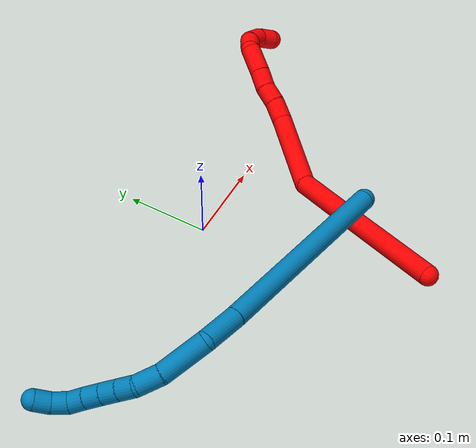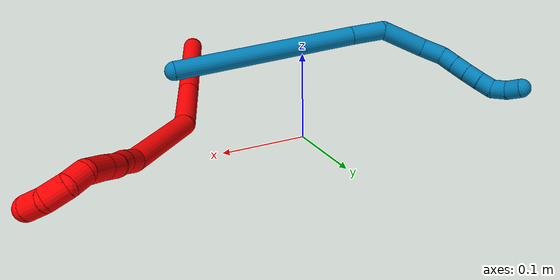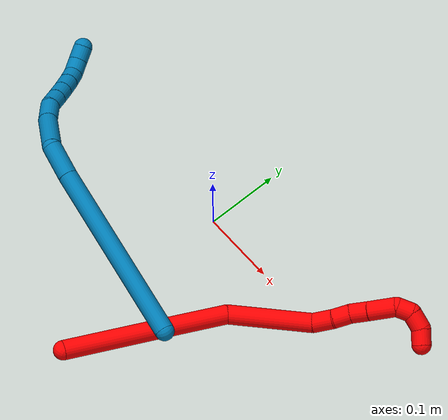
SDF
<sdf version="1.7">
 <world name="default">
  <model name="photoneo_s_sensor">
   <static>1</static>
   <pose>0 0 2 1.57079 1.57079 3.14159</pose>
   <link name="link">
    <inertial><mass>0.1</mass></inertial>
    <sensor name="sensor" type="depth">
     <update_rate>30</update_rate>
     <camera>
      <horizontal_fov>1.22</horizontal_fov>
      <image><width>1920</width><height>1200</height><format>B8G8R8</format></image>
      <clip><near>0.1</near><far>4</far></clip>
      <depth_camera><output>points</output></depth_camera>
     </camera>
     <plugin name="camera_plugin" filename="libgazebo_ros_depth_camera.so">
      <baseline>0.2</baseline>
      <alwaysOn>1</alwaysOn>
      <updateRate>0.0</updateRate>
      <cameraName>camera_ir</cameraName>
      <imageTopicName>/camera/color/image_raw</imageTopicName>
      <cameraInfoTopicName>/camera/color/camera_info</cameraInfoTopicName>
      <depthImageTopicName>/camera/depth/image_raw</depthImageTopicName>
      <depthImageCameraInfoTopicName>/camera/depth/camera_info</depthImageCameraInfoTopicName>
      <pointCloudTopicName>/camera/depth/points</pointCloudTopicName>
      <frameName>fr_optical</frameName>
      <pointCloudCutoff>0.1</pointCloudCutoff>
      <pointCloudCutoffMax>2.0</pointCloudCutoffMax>
      <distortionK1>0</distortionK1>
      <distortionK2>0</distortionK2>
      <distortionK3>0</distortionK3>
      <distortionT1>0</distortionT1>
      <distortionT2>0</distortionT2>
      <CxPrime>0</CxPrime>
      <Cx>0</Cx>
      <Cy>0</Cy>
      <focalLength>0</focalLength>
      <hackBaseline>0</hackBaseline>
     </plugin>
    </sensor>
   </link>
  </model>
  <model name="bin">
   <static>1</static>
   <link name="bottom">
    <collision name="collision-bottom">
     <pose>0 0 -0.01 0 -0 0</pose>
     <geometry><box><size>0.8 0.6 0.02</size></box></geometry>
     <surface>
      <friction><ode><mu>100</mu><mu2>100</mu2></ode></friction>
      <contact><collide_bitmask>65535</collide_bitmask></contact>
     </surface>
    </collision>
   </link>
   <link name="west_wall">
    <collision name="collision-west_wall">
     <pose>-0.41 0 0.1 0 -0 0</pose>
     <geometry><box><size>0.02 0.6 0.2</size></box></geometry>
     <surface>
      <friction><ode><mu>100</mu><mu2>100</mu2></ode></friction>
      <contact><collide_bitmask>65535</collide_bitmask></contact>
     </surface>
    </collision>
   </link>
   <link name="east_wall">
    <collision name="collision-east_wall">
     <pose>0.41 0 0.1 0 -0 0</pose>
     <geometry><box><size>0.02 0.6 0.2</size></box></geometry>
     <surface>
      <friction><ode><mu>100</mu><mu2>100</mu2></ode></friction>
      <contact><collide_bitmask>65535</collide_bitmask></contact>
     </surface>
    </collision>
   </link>
   <link name="south_wall">
    <collision name="collision-south_wall">
     <pose>0 -0.31 0.1 0 -0 0</pose>
     <geometry><box><size>0.8 0.02 0.2</size></box></geometry>
     <surface>
      <friction><ode><mu>100</mu><mu2>100</mu2></ode></friction>
      <contact><collide_bitmask>65535</collide_bitmask></contact>
     </surface>
    </collision>
   </link>
   <link name="north_wall">
    <collision name="collision-north_wall">
     <pose>0 0.31 0.1 0 -0 0</pose>
     <geometry><box><size>0.8 0.02 0.2</size></box></geometry>
     <surface>
      <friction><ode><mu>100</mu><mu2>100</mu2></ode></friction>
      <contact><collide_bitmask>65535</collide_bitmask></contact>
     </surface>
    </collision>
   </link>
  </model>
  <model name="2">
   <static>0</static>
   <link name="2">
    <collision name="collision-cylinder-e_1_1_4">
     <pose>0.049173 0.0345 0.031501 -0.830805 0.811004 -0.374266</pose>
     <geometry><cylinder><radius>0.0125</radius><length>0.135655</length></cylinder></geometry>
     <surface>
      <friction><ode><mu>1.16</mu><mu2>1.16</mu2><slip1>0</slip1><slip2>0</slip2></ode></friction>
      <contact><ode><kp>1e+06</kp><kd>1</kd><max_vel>0</max_vel><min_depth>0.001</min_depth></ode></contact>
     </surface>
    </collision>
    <visual name="visual-cylinder-e_1_1_4">
     <pose>0.049173 0.0345 0.031501 -0.830805 0.811004 -0.374266</pose>
     <geometry><cylinder><radius>0.0125</radius><length>0.135655</length></cylinder></geometry>
     <material><ambient>1 0 0 1</ambient></material>
    </visual>
    <collision name="collision-cylinder-e_2_4_5">
     <pose>0.127702 0.08966 0.082113 -0.824338 0.806451 -0.368793</pose>
     <geometry><cylinder><radius>0.0125</radius><length>0.081336</length></cylinder></geometry>
     <surface>
      <friction><ode><mu>1.16</mu><mu2>1.16</mu2><slip1>0</slip1><slip2>0</slip2></ode></friction>
      <contact><ode><kp>1e+06</kp><kd>1</kd><max_vel>0</max_vel><min_depth>0.001</min_depth></ode></contact>
     </surface>
    </collision>
    <visual name="visual-cylinder-e_2_4_5">
     <pose>0.127702 0.08966 0.082113 -0.824338 0.806451 -0.368793</pose>
     <geometry><cylinder><radius>0.0125</radius><length>0.081336</length></cylinder></geometry>
     <material><ambient>1 0 0 1</ambient></material>
    </visual>
    <collision name="collision-cylinder-e_3_5_6">
     <pose>0.18128 0.131557 0.145326 -0.448755 0.459528 -0.106658</pose>
     <geometry><cylinder><radius>0.0125</radius><length>0.109227</length></cylinder></geometry>
     <surface>
      <friction><ode><mu>1.16</mu><mu2>1.16</mu2><slip1>0</slip1><slip2>0</slip2></ode></friction>
      <contact><ode><kp>1e+06</kp><kd>1</kd><max_vel>0</max_vel><min_depth>0.001</min_depth></ode></contact>
     </surface>
    </collision>
    <visual name="visual-cylinder-e_3_5_6">
     <pose>0.18128 0.131557 0.145326 -0.448755 0.459528 -0.106658</pose>
     <geometry><cylinder><radius>0.0125</radius><length>0.109227</length></cylinder></geometry>
     <material><ambient>1 0 0 1</ambient></material>
    </visual>
    <collision name="collision-cylinder-e_4_6_7">
     <pose>0.208381 0.162078 0.198923 -0.77422 0.213452 -0.087296</pose>
     <geometry><cylinder><radius>0.0125</radius><length>0.027178</length></cylinder></geometry>
     <surface>
      <friction><ode><mu>1.16</mu><mu2>1.16</mu2><slip1>0</slip1><slip2>0</slip2></ode></friction>
      <contact><ode><kp>1e+06</kp><kd>1</kd><max_vel>0</max_vel><min_depth>0.001</min_depth></ode></contact>
     </surface>
    </collision>
    <visual name="visual-cylinder-e_4_6_7">
     <pose>0.208381 0.162078 0.198923 -0.77422 0.213452 -0.087296</pose>
     <geometry><cylinder><radius>0.0125</radius><length>0.027178</length></cylinder></geometry>
     <material><ambient>1 0 0 1</ambient></material>
    </visual>
    <collision name="collision-cylinder-e_5_7_8">
     <pose>0.215204 0.179783 0.215359 -0.881334 0.346852 -0.16486</pose>
     <geometry><cylinder><radius>0.0125</radius><length>0.023206</length></cylinder></geometry>
     <surface>
      <friction><ode><mu>1.16</mu><mu2>1.16</mu2><slip1>0</slip1><slip2>0</slip2></ode></friction>
      <contact><ode><kp>1e+06</kp><kd>1</kd><max_vel>0</max_vel><min_depth>0.001</min_depth></ode></contact>
     </surface>
    </collision>
    <visual name="visual-cylinder-e_5_7_8">
     <pose>0.215204 0.179783 0.215359 -0.881334 0.346852 -0.16486</pose>
     <geometry><cylinder><radius>0.0125</radius><length>0.023206</length></cylinder></geometry>
     <material><ambient>1 0 0 1</ambient></material>
    </visual>
    <collision name="collision-cylinder-e_6_8_9">
     <pose>0.221498 0.195683 0.230981 -0.71126 0.202257 -0.075344</pose>
     <geometry><cylinder><radius>0.0125</radius><length>0.023395</length></cylinder></geometry>
     <surface>
      <friction><ode><mu>1.16</mu><mu2>1.16</mu2><slip1>0</slip1><slip2>0</slip2></ode></friction>
      <contact><ode><kp>1e+06</kp><kd>1</kd><max_vel>0</max_vel><min_depth>0.001</min_depth></ode></contact>
     </surface>
    </collision>
    <visual name="visual-cylinder-e_6_8_9">
     <pose>0.221498 0.195683 0.230981 -0.71126 0.202257 -0.075344</pose>
     <geometry><cylinder><radius>0.0125</radius><length>0.023395</length></cylinder></geometry>
     <material><ambient>1 0 0 1</ambient></material>
    </visual>
    <collision name="collision-cylinder-e_7_9_10">
     <pose>0.228366 0.214833 0.252642 -0.732287 0.253301 -0.097569</pose>
     <geometry><cylinder><radius>0.0125</radius><length>0.036062</length></cylinder></geometry>
     <surface>
      <friction><ode><mu>1.16</mu><mu2>1.16</mu2><slip1>0</slip1><slip2>0</slip2></ode></friction>
      <contact><ode><kp>1e+06</kp><kd>1</kd><max_vel>0</max_vel><min_depth>0.001</min_depth></ode></contact>
     </surface>
    </collision>
    <visual name="visual-cylinder-e_7_9_10">
     <pose>0.228366 0.214833 0.252642 -0.732287 0.253301 -0.097569</pose>
     <geometry><cylinder><radius>0.0125</radius><length>0.036062</length></cylinder></geometry>
     <material><ambient>1 0 0 1</ambient></material>
    </visual>
    <collision name="collision-cylinder-e_8_10_11">
     <pose>0.237842 0.22764 0.274408 -0.128709 0.510162 -0.033605</pose>
     <geometry><cylinder><radius>0.0125</radius><length>0.020302</length></cylinder></geometry>
     <surface>
      <friction><ode><mu>1.16</mu><mu2>1.16</mu2><slip1>0</slip1><slip2>0</slip2></ode></friction>
      <contact><ode><kp>1e+06</kp><kd>1</kd><max_vel>0</max_vel><min_depth>0.001</min_depth></ode></contact>
     </surface>
    </collision>
    <visual name="visual-cylinder-e_8_10_11">
     <pose>0.237842 0.22764 0.274408 -0.128709 0.510162 -0.033605</pose>
     <geometry><cylinder><radius>0.0125</radius><length>0.020302</length></cylinder></geometry>
     <material><ambient>1 0 0 1</ambient></material>
    </visual>
    <collision name="collision-cylinder-e_9_11_12">
     <pose>0.245862 0.22302 0.292687 0.545143 0.269212 0.075674</pose>
     <geometry><cylinder><radius>0.0125</radius><length>0.023036</length></cylinder></geometry>
     <surface>
      <friction><ode><mu>1.16</mu><mu2>1.16</mu2><slip1>0</slip1><slip2>0</slip2></ode></friction>
      <contact><ode><kp>1e+06</kp><kd>1</kd><max_vel>0</max_vel><min_depth>0.001</min_depth></ode></contact>
     </surface>
    </collision>
    <visual name="visual-cylinder-e_9_11_12">
     <pose>0.245862 0.22302 0.292687 0.545143 0.269212 0.075674</pose>
     <geometry><cylinder><radius>0.0125</radius><length>0.023036</length></cylinder></geometry>
     <material><ambient>1 0 0 1</ambient></material>
    </visual>
    <collision name="collision-cylinder-e_10_12_2">
     <pose>0.248703 0.208769 0.308007 0.96956 -0.021564 -0.011358</pose>
     <geometry><cylinder><radius>0.0125</radius><length>0.020605</length></cylinder></geometry>
     <surface>
      <friction><ode><mu>1.16</mu><mu2>1.16</mu2><slip1>0</slip1><slip2>0</slip2></ode></friction>
      <contact><ode><kp>1e+06</kp><kd>1</kd><max_vel>0</max_vel><min_depth>0.001</min_depth></ode></contact>
     </surface>
    </collision>
    <visual name="visual-cylinder-e_10_12_2">
     <pose>0.248703 0.208769 0.308007 0.96956 -0.021564 -0.011358</pose>
     <geometry><cylinder><radius>0.0125</radius><length>0.020605</length></cylinder></geometry>
     <material><ambient>1 0 0 1</ambient></material>
    </visual>
    <collision name="collision-sphere-2">
     <pose>0.248481 0.200275 0.313833 0 -0 0</pose>
     <geometry><sphere><radius>0.0125</radius></sphere></geometry>
     <surface>
      <friction><ode><mu>1.16</mu><mu2>1.16</mu2><slip1>0</slip1><slip2>0</slip2></ode></friction>
      <contact><ode><kp>1e+06</kp><kd>1</kd><max_vel>0</max_vel><min_depth>0.001</min_depth></ode></contact>
     </surface>
    </collision>
    <visual name="visual-sphere-2">
     <pose>0.248481 0.200275 0.313833 0 -0 0</pose>
     <geometry><sphere><radius>0.0125</radius></sphere></geometry>
     <material><ambient>1 0 0 1</ambient></material>
    </visual>
    <collision name="collision-sphere-12">
     <pose>0.248925 0.217263 0.30218 0 -0 0</pose>
     <geometry><sphere><radius>0.0125</radius></sphere></geometry>
     <surface>
      <friction><ode><mu>1.16</mu><mu2>1.16</mu2><slip1>0</slip1><slip2>0</slip2></ode></friction>
      <contact><ode><kp>1e+06</kp><kd>1</kd><max_vel>0</max_vel><min_depth>0.001</min_depth></ode></contact>
     </surface>
    </collision>
    <visual name="visual-sphere-12">
     <pose>0.248925 0.217263 0.30218 0 -0 0</pose>
     <geometry><sphere><radius>0.0125</radius></sphere></geometry>
     <material><ambient>1 0 0 1</ambient></material>
    </visual>
    <collision name="collision-sphere-11">
     <pose>0.242799 0.228777 0.283193 0 -0 0</pose>
     <geometry><sphere><radius>0.0125</radius></sphere></geometry>
     <surface>
      <friction><ode><mu>1.16</mu><mu2>1.16</mu2><slip1>0</slip1><slip2>0</slip2></ode></friction>
      <contact><ode><kp>1e+06</kp><kd>1</kd><max_vel>0</max_vel><min_depth>0.001</min_depth></ode></contact>
     </surface>
    </collision>
    <visual name="visual-sphere-11">
     <pose>0.242799 0.228777 0.283193 0 -0 0</pose>
     <geometry><sphere><radius>0.0125</radius></sphere></geometry>
     <material><ambient>1 0 0 1</ambient></material>
    </visual>
    <collision name="collision-sphere-10">
     <pose>0.232885 0.226503 0.265623 0 -0 0</pose>
     <geometry><sphere><radius>0.0125</radius></sphere></geometry>
     <surface>
      <friction><ode><mu>1.16</mu><mu2>1.16</mu2><slip1>0</slip1><slip2>0</slip2></ode></friction>
      <contact><ode><kp>1e+06</kp><kd>1</kd><max_vel>0</max_vel><min_depth>0.001</min_depth></ode></contact>
     </surface>
    </collision>
    <visual name="visual-sphere-10">
     <pose>0.232885 0.226503 0.265623 0 -0 0</pose>
     <geometry><sphere><radius>0.0125</radius></sphere></geometry>
     <material><ambient>1 0 0 1</ambient></material>
    </visual>
    <collision name="collision-sphere-9">
     <pose>0.223848 0.203163 0.239662 0 -0 0</pose>
     <geometry><sphere><radius>0.0125</radius></sphere></geometry>
     <surface>
      <friction><ode><mu>1.16</mu><mu2>1.16</mu2><slip1>0</slip1><slip2>0</slip2></ode></friction>
      <contact><ode><kp>1e+06</kp><kd>1</kd><max_vel>0</max_vel><min_depth>0.001</min_depth></ode></contact>
     </surface>
    </collision>
    <visual name="visual-sphere-9">
     <pose>0.223848 0.203163 0.239662 0 -0 0</pose>
     <geometry><sphere><radius>0.0125</radius></sphere></geometry>
     <material><ambient>1 0 0 1</ambient></material>
    </visual>
    <collision name="collision-sphere-4">
     <pose>0.098347 0.068999 0.063001 0 -0 0</pose>
     <geometry><sphere><radius>0.0125</radius></sphere></geometry>
     <surface>
      <friction><ode><mu>1.16</mu><mu2>1.16</mu2><slip1>0</slip1><slip2>0</slip2></ode></friction>
      <contact><ode><kp>1e+06</kp><kd>1</kd><max_vel>0</max_vel><min_depth>0.001</min_depth></ode></contact>
     </surface>
    </collision>
    <visual name="visual-sphere-4">
     <pose>0.098347 0.068999 0.063001 0 -0 0</pose>
     <geometry><sphere><radius>0.0125</radius></sphere></geometry>
     <material><ambient>1 0 0 1</ambient></material>
    </visual>
    <collision name="collision-sphere-1">
     <geometry><sphere><radius>0.0125</radius></sphere></geometry>
     <surface>
      <friction><ode><mu>1.16</mu><mu2>1.16</mu2><slip1>0</slip1><slip2>0</slip2></ode></friction>
      <contact><ode><kp>1e+06</kp><kd>1</kd><max_vel>0</max_vel><min_depth>0.001</min_depth></ode></contact>
     </surface>
    </collision>
    <visual name="visual-sphere-1">
     <geometry><sphere><radius>0.0125</radius></sphere></geometry>
     <material><ambient>1 0 0 1</ambient></material>
    </visual>
    <collision name="collision-sphere-8">
     <pose>0.219148 0.188202 0.222301 0 -0 0</pose>
     <geometry><sphere><radius>0.0125</radius></sphere></geometry>
     <surface>
      <friction><ode><mu>1.16</mu><mu2>1.16</mu2><slip1>0</slip1><slip2>0</slip2></ode></friction>
      <contact><ode><kp>1e+06</kp><kd>1</kd><max_vel>0</max_vel><min_depth>0.001</min_depth></ode></contact>
     </surface>
    </collision>
    <visual name="visual-sphere-8">
     <pose>0.219148 0.188202 0.222301 0 -0 0</pose>
     <geometry><sphere><radius>0.0125</radius></sphere></geometry>
     <material><ambient>1 0 0 1</ambient></material>
    </visual>
    <collision name="collision-sphere-5">
     <pose>0.157058 0.110321 0.101224 0 -0 0</pose>
     <geometry><sphere><radius>0.0125</radius></sphere></geometry>
     <surface>
      <friction><ode><mu>1.16</mu><mu2>1.16</mu2><slip1>0</slip1><slip2>0</slip2></ode></friction>
      <contact><ode><kp>1e+06</kp><kd>1</kd><max_vel>0</max_vel><min_depth>0.001</min_depth></ode></contact>
     </surface>
    </collision>
    <visual name="visual-sphere-5">
     <pose>0.157058 0.110321 0.101224 0 -0 0</pose>
     <geometry><sphere><radius>0.0125</radius></sphere></geometry>
     <material><ambient>1 0 0 1</ambient></material>
    </visual>
    <collision name="collision-sphere-6">
     <pose>0.205502 0.152793 0.189427 0 -0 0</pose>
     <geometry><sphere><radius>0.0125</radius></sphere></geometry>
     <surface>
      <friction><ode><mu>1.16</mu><mu2>1.16</mu2><slip1>0</slip1><slip2>0</slip2></ode></friction>
      <contact><ode><kp>1e+06</kp><kd>1</kd><max_vel>0</max_vel><min_depth>0.001</min_depth></ode></contact>
     </surface>
    </collision>
    <visual name="visual-sphere-6">
     <pose>0.205502 0.152793 0.189427 0 -0 0</pose>
     <geometry><sphere><radius>0.0125</radius></sphere></geometry>
     <material><ambient>1 0 0 1</ambient></material>
    </visual>
    <collision name="collision-sphere-7">
     <pose>0.21126 0.171364 0.208418 0 -0 0</pose>
     <geometry><sphere><radius>0.0125</radius></sphere></geometry>
     <surface>
      <friction><ode><mu>1.16</mu><mu2>1.16</mu2><slip1>0</slip1><slip2>0</slip2></ode></friction>
      <contact><ode><kp>1e+06</kp><kd>1</kd><max_vel>0</max_vel><min_depth>0.001</min_depth></ode></contact>
     </surface>
    </collision>
    <visual name="visual-sphere-7">
     <pose>0.21126 0.171364 0.208418 0 -0 0</pose>
     <geometry><sphere><radius>0.0125</radius></sphere></geometry>
     <material><ambient>1 0 0 1</ambient></material>
    </visual>
    <inertial>
     <pose>0.153099 0.12261 0.140807 0 -0 0</pose>
     <mass>0.5</mass>
     <inertia>
      <ixx>0.000226</ixx>
      <ixy>0</ixy>
      <ixz>0</ixz>
      <iyy>0.00027</iyy>
      <iyz>0</iyz>
      <izz>-0.000402</izz>
     </inertia>
    </inertial>
   </link>
   <pose>0.03639 -0.274839 0.047328 1.4235 0.848298 1.5866</pose>
  </model>
  <model name="9">
   <static>0</static>
   <link name="9">
    <collision name="collision-cylinder-e_1_1_4">
     <pose>-0.079319 0.039698 0.082547 -0.448256 -0.713686 0.169559</pose>
     <geometry><cylinder><radius>0.0125</radius><length>0.242334</length></cylinder></geometry>
     <surface>
      <friction><ode><mu>1.16</mu><mu2>1.16</mu2><slip1>0</slip1><slip2>0</slip2></ode></friction>
      <contact><ode><kp>1e+06</kp><kd>1</kd><max_vel>0</max_vel><min_depth>0.001</min_depth></ode></contact>
     </surface>
    </collision>
    <visual name="visual-cylinder-e_1_1_4">
     <pose>-0.079319 0.039698 0.082547 -0.448256 -0.713686 0.169559</pose>
     <geometry><cylinder><radius>0.0125</radius><length>0.242334</length></cylinder></geometry>
     <material><ambient>0 0.490196 0.709804 1</ambient></material>
    </visual>
    <collision name="collision-cylinder-e_2_4_5">
     <pose>-0.173352 0.088173 0.180644 -0.513919 -0.689252 0.188085</pose>
     <geometry><cylinder><radius>0.0125</radius><length>0.046275</length></cylinder></geometry>
     <surface>
      <friction><ode><mu>1.16</mu><mu2>1.16</mu2><slip1>0</slip1><slip2>0</slip2></ode></friction>
      <contact><ode><kp>1e+06</kp><kd>1</kd><max_vel>0</max_vel><min_depth>0.001</min_depth></ode></contact>
     </surface>
    </collision>
    <visual name="visual-cylinder-e_2_4_5">
     <pose>-0.173352 0.088173 0.180644 -0.513919 -0.689252 0.188085</pose>
     <geometry><cylinder><radius>0.0125</radius><length>0.046275</length></cylinder></geometry>
     <material><ambient>0 0.490196 0.709804 1</ambient></material>
    </visual>
    <collision name="collision-cylinder-e_3_5_6">
     <pose>-0.208778 0.117283 0.201016 -1.3379 -0.78093 0.629167</pose>
     <geometry><cylinder><radius>0.0125</radius><length>0.058843</length></cylinder></geometry>
     <surface>
      <friction><ode><mu>1.16</mu><mu2>1.16</mu2><slip1>0</slip1><slip2>0</slip2></ode></friction>
      <contact><ode><kp>1e+06</kp><kd>1</kd><max_vel>0</max_vel><min_depth>0.001</min_depth></ode></contact>
     </surface>
    </collision>
    <visual name="visual-cylinder-e_3_5_6">
     <pose>-0.208778 0.117283 0.201016 -1.3379 -0.78093 0.629167</pose>
     <geometry><cylinder><radius>0.0125</radius><length>0.058843</length></cylinder></geometry>
     <material><ambient>0 0.490196 0.709804 1</ambient></material>
    </visual>
    <collision name="collision-cylinder-e_4_6_7">
     <pose>-0.237691 0.150109 0.208627 -1.35119 -0.569823 0.46108</pose>
     <geometry><cylinder><radius>0.0125</radius><length>0.030406</length></cylinder></geometry>
     <surface>
      <friction><ode><mu>1.16</mu><mu2>1.16</mu2><slip1>0</slip1><slip2>0</slip2></ode></friction>
      <contact><ode><kp>1e+06</kp><kd>1</kd><max_vel>0</max_vel><min_depth>0.001</min_depth></ode></contact>
     </surface>
    </collision>
    <visual name="visual-cylinder-e_4_6_7">
     <pose>-0.237691 0.150109 0.208627 -1.35119 -0.569823 0.46108</pose>
     <geometry><cylinder><radius>0.0125</radius><length>0.030406</length></cylinder></geometry>
     <material><ambient>0 0.490196 0.709804 1</ambient></material>
    </visual>
    <collision name="collision-cylinder-e_5_7_8">
     <pose>-0.249456 0.172313 0.210671 -1.64741 -0.350782 0.378103</pose>
     <geometry><cylinder><radius>0.0125</radius><length>0.02074</length></cylinder></geometry>
     <surface>
      <friction><ode><mu>1.16</mu><mu2>1.16</mu2><slip1>0</slip1><slip2>0</slip2></ode></friction>
      <contact><ode><kp>1e+06</kp><kd>1</kd><max_vel>0</max_vel><min_depth>0.001</min_depth></ode></contact>
     </surface>
    </collision>
    <visual name="visual-cylinder-e_5_7_8">
     <pose>-0.249456 0.172313 0.210671 -1.64741 -0.350782 0.378103</pose>
     <geometry><cylinder><radius>0.0125</radius><length>0.02074</length></cylinder></geometry>
     <material><ambient>0 0.490196 0.709804 1</ambient></material>
    </visual>
    <collision name="collision-cylinder-e_6_8_9">
     <pose>-0.256587 0.191588 0.209285 -1.63761 -0.356265 0.38033</pose>
     <geometry><cylinder><radius>0.0125</radius><length>0.020459</length></cylinder></geometry>
     <surface>
      <friction><ode><mu>1.16</mu><mu2>1.16</mu2><slip1>0</slip1><slip2>0</slip2></ode></friction>
      <contact><ode><kp>1e+06</kp><kd>1</kd><max_vel>0</max_vel><min_depth>0.001</min_depth></ode></contact>
     </surface>
    </collision>
    <visual name="visual-cylinder-e_6_8_9">
     <pose>-0.256587 0.191588 0.209285 -1.63761 -0.356265 0.38033</pose>
     <geometry><cylinder><radius>0.0125</radius><length>0.020459</length></cylinder></geometry>
     <material><ambient>0 0.490196 0.709804 1</ambient></material>
    </visual>
    <collision name="collision-cylinder-e_7_9_10">
     <pose>-0.263907 0.21082 0.208302 -1.60624 -0.370053 0.38309</pose>
     <geometry><cylinder><radius>0.0125</radius><length>0.020749</length></cylinder></geometry>
     <surface>
      <friction><ode><mu>1.16</mu><mu2>1.16</mu2><slip1>0</slip1><slip2>0</slip2></ode></friction>
      <contact><ode><kp>1e+06</kp><kd>1</kd><max_vel>0</max_vel><min_depth>0.001</min_depth></ode></contact>
     </surface>
    </collision>
    <visual name="visual-cylinder-e_7_9_10">
     <pose>-0.263907 0.21082 0.208302 -1.60624 -0.370053 0.38309</pose>
     <geometry><cylinder><radius>0.0125</radius><length>0.020749</length></cylinder></geometry>
     <material><ambient>0 0.490196 0.709804 1</ambient></material>
    </visual>
    <collision name="collision-cylinder-e_8_10_11">
     <pose>-0.271615 0.229722 0.207924 -1.57466 -0.404702 0.406228</pose>
     <geometry><cylinder><radius>0.0125</radius><length>0.020095</length></cylinder></geometry>
     <surface>
      <friction><ode><mu>1.16</mu><mu2>1.16</mu2><slip1>0</slip1><slip2>0</slip2></ode></friction>
      <contact><ode><kp>1e+06</kp><kd>1</kd><max_vel>0</max_vel><min_depth>0.001</min_depth></ode></contact>
     </surface>
    </collision>
    <visual name="visual-cylinder-e_8_10_11">
     <pose>-0.271615 0.229722 0.207924 -1.57466 -0.404702 0.406228</pose>
     <geometry><cylinder><radius>0.0125</radius><length>0.020095</length></cylinder></geometry>
     <material><ambient>0 0.490196 0.709804 1</ambient></material>
    </visual>
    <collision name="collision-cylinder-e_9_11_12">
     <pose>-0.277069 0.247945 0.212025 -1.13939 -0.150271 0.096361</pose>
     <geometry><cylinder><radius>0.0125</radius><length>0.020011</length></cylinder></geometry>
     <surface>
      <friction><ode><mu>1.16</mu><mu2>1.16</mu2><slip1>0</slip1><slip2>0</slip2></ode></friction>
      <contact><ode><kp>1e+06</kp><kd>1</kd><max_vel>0</max_vel><min_depth>0.001</min_depth></ode></contact>
     </surface>
    </collision>
    <visual name="visual-cylinder-e_9_11_12">
     <pose>-0.277069 0.247945 0.212025 -1.13939 -0.150271 0.096361</pose>
     <geometry><cylinder><radius>0.0125</radius><length>0.020011</length></cylinder></geometry>
     <material><ambient>0 0.490196 0.709804 1</ambient></material>
    </visual>
    <collision name="collision-cylinder-e_10_12_2">
     <pose>-0.278043 0.265233 0.22179 -0.97499 0.052183 -0.02767</pose>
     <geometry><cylinder><radius>0.0125</radius><length>0.020088</length></cylinder></geometry>
     <surface>
      <friction><ode><mu>1.16</mu><mu2>1.16</mu2><slip1>0</slip1><slip2>0</slip2></ode></friction>
      <contact><ode><kp>1e+06</kp><kd>1</kd><max_vel>0</max_vel><min_depth>0.001</min_depth></ode></contact>
     </surface>
    </collision>
    <visual name="visual-cylinder-e_10_12_2">
     <pose>-0.278043 0.265233 0.22179 -0.97499 0.052183 -0.02767</pose>
     <geometry><cylinder><radius>0.0125</radius><length>0.020088</length></cylinder></geometry>
     <material><ambient>0 0.490196 0.709804 1</ambient></material>
    </visual>
    <collision name="collision-sphere-2">
     <pose>-0.277519 0.273535 0.227419 0 -0 0</pose>
     <geometry><sphere><radius>0.0125</radius></sphere></geometry>
     <surface>
      <friction><ode><mu>1.16</mu><mu2>1.16</mu2><slip1>0</slip1><slip2>0</slip2></ode></friction>
      <contact><ode><kp>1e+06</kp><kd>1</kd><max_vel>0</max_vel><min_depth>0.001</min_depth></ode></contact>
     </surface>
    </collision>
    <visual name="visual-sphere-2">
     <pose>-0.277519 0.273535 0.227419 0 -0 0</pose>
     <geometry><sphere><radius>0.0125</radius></sphere></geometry>
     <material><ambient>0 0.490196 0.709804 1</ambient></material>
    </visual>
    <collision name="collision-sphere-12">
     <pose>-0.278567 0.256931 0.216161 0 -0 0</pose>
     <geometry><sphere><radius>0.0125</radius></sphere></geometry>
     <surface>
      <friction><ode><mu>1.16</mu><mu2>1.16</mu2><slip1>0</slip1><slip2>0</slip2></ode></friction>
      <contact><ode><kp>1e+06</kp><kd>1</kd><max_vel>0</max_vel><min_depth>0.001</min_depth></ode></contact>
     </surface>
    </collision>
    <visual name="visual-sphere-12">
     <pose>-0.278567 0.256931 0.216161 0 -0 0</pose>
     <geometry><sphere><radius>0.0125</radius></sphere></geometry>
     <material><ambient>0 0.490196 0.709804 1</ambient></material>
    </visual>
    <collision name="collision-sphere-11">
     <pose>-0.275571 0.238958 0.207888 0 -0 0</pose>
     <geometry><sphere><radius>0.0125</radius></sphere></geometry>
     <surface>
      <friction><ode><mu>1.16</mu><mu2>1.16</mu2><slip1>0</slip1><slip2>0</slip2></ode></friction>
      <contact><ode><kp>1e+06</kp><kd>1</kd><max_vel>0</max_vel><min_depth>0.001</min_depth></ode></contact>
     </surface>
    </collision>
    <visual name="visual-sphere-11">
     <pose>-0.275571 0.238958 0.207888 0 -0 0</pose>
     <geometry><sphere><radius>0.0125</radius></sphere></geometry>
     <material><ambient>0 0.490196 0.709804 1</ambient></material>
    </visual>
    <collision name="collision-sphere-10">
     <pose>-0.267659 0.220487 0.20796 0 -0 0</pose>
     <geometry><sphere><radius>0.0125</radius></sphere></geometry>
     <surface>
      <friction><ode><mu>1.16</mu><mu2>1.16</mu2><slip1>0</slip1><slip2>0</slip2></ode></friction>
      <contact><ode><kp>1e+06</kp><kd>1</kd><max_vel>0</max_vel><min_depth>0.001</min_depth></ode></contact>
     </surface>
    </collision>
    <visual name="visual-sphere-10">
     <pose>-0.267659 0.220487 0.20796 0 -0 0</pose>
     <geometry><sphere><radius>0.0125</radius></sphere></geometry>
     <material><ambient>0 0.490196 0.709804 1</ambient></material>
    </visual>
    <collision name="collision-sphere-9">
     <pose>-0.260155 0.201154 0.208645 0 -0 0</pose>
     <geometry><sphere><radius>0.0125</radius></sphere></geometry>
     <surface>
      <friction><ode><mu>1.16</mu><mu2>1.16</mu2><slip1>0</slip1><slip2>0</slip2></ode></friction>
      <contact><ode><kp>1e+06</kp><kd>1</kd><max_vel>0</max_vel><min_depth>0.001</min_depth></ode></contact>
     </surface>
    </collision>
    <visual name="visual-sphere-9">
     <pose>-0.260155 0.201154 0.208645 0 -0 0</pose>
     <geometry><sphere><radius>0.0125</radius></sphere></geometry>
     <material><ambient>0 0.490196 0.709804 1</ambient></material>
    </visual>
    <collision name="collision-sphere-4">
     <pose>-0.158638 0.079395 0.165095 0 -0 0</pose>
     <geometry><sphere><radius>0.0125</radius></sphere></geometry>
     <surface>
      <friction><ode><mu>1.16</mu><mu2>1.16</mu2><slip1>0</slip1><slip2>0</slip2></ode></friction>
      <contact><ode><kp>1e+06</kp><kd>1</kd><max_vel>0</max_vel><min_depth>0.001</min_depth></ode></contact>
     </surface>
    </collision>
    <visual name="visual-sphere-4">
     <pose>-0.158638 0.079395 0.165095 0 -0 0</pose>
     <geometry><sphere><radius>0.0125</radius></sphere></geometry>
     <material><ambient>0 0.490196 0.709804 1</ambient></material>
    </visual>
    <collision name="collision-sphere-1">
     <geometry><sphere><radius>0.0125</radius></sphere></geometry>
     <surface>
      <friction><ode><mu>1.16</mu><mu2>1.16</mu2><slip1>0</slip1><slip2>0</slip2></ode></friction>
      <contact><ode><kp>1e+06</kp><kd>1</kd><max_vel>0</max_vel><min_depth>0.001</min_depth></ode></contact>
     </surface>
    </collision>
    <visual name="visual-sphere-1">
     <geometry><sphere><radius>0.0125</radius></sphere></geometry>
     <material><ambient>0 0.490196 0.709804 1</ambient></material>
    </visual>
    <collision name="collision-sphere-8">
     <pose>-0.253019 0.182023 0.209925 0 -0 0</pose>
     <geometry><sphere><radius>0.0125</radius></sphere></geometry>
     <surface>
      <friction><ode><mu>1.16</mu><mu2>1.16</mu2><slip1>0</slip1><slip2>0</slip2></ode></friction>
      <contact><ode><kp>1e+06</kp><kd>1</kd><max_vel>0</max_vel><min_depth>0.001</min_depth></ode></contact>
     </surface>
    </collision>
    <visual name="visual-sphere-8">
     <pose>-0.253019 0.182023 0.209925 0 -0 0</pose>
     <geometry><sphere><radius>0.0125</radius></sphere></geometry>
     <material><ambient>0 0.490196 0.709804 1</ambient></material>
    </visual>
    <collision name="collision-sphere-5">
     <pose>-0.188067 0.096951 0.196193 0 -0 0</pose>
     <geometry><sphere><radius>0.0125</radius></sphere></geometry>
     <surface>
      <friction><ode><mu>1.16</mu><mu2>1.16</mu2><slip1>0</slip1><slip2>0</slip2></ode></friction>
      <contact><ode><kp>1e+06</kp><kd>1</kd><max_vel>0</max_vel><min_depth>0.001</min_depth></ode></contact>
     </surface>
    </collision>
    <visual name="visual-sphere-5">
     <pose>-0.188067 0.096951 0.196193 0 -0 0</pose>
     <geometry><sphere><radius>0.0125</radius></sphere></geometry>
     <material><ambient>0 0.490196 0.709804 1</ambient></material>
    </visual>
    <collision name="collision-sphere-6">
     <pose>-0.229489 0.137616 0.205839 0 -0 0</pose>
     <geometry><sphere><radius>0.0125</radius></sphere></geometry>
     <surface>
      <friction><ode><mu>1.16</mu><mu2>1.16</mu2><slip1>0</slip1><slip2>0</slip2></ode></friction>
      <contact><ode><kp>1e+06</kp><kd>1</kd><max_vel>0</max_vel><min_depth>0.001</min_depth></ode></contact>
     </surface>
    </collision>
    <visual name="visual-sphere-6">
     <pose>-0.229489 0.137616 0.205839 0 -0 0</pose>
     <geometry><sphere><radius>0.0125</radius></sphere></geometry>
     <material><ambient>0 0.490196 0.709804 1</ambient></material>
    </visual>
    <collision name="collision-sphere-7">
     <pose>-0.245892 0.162603 0.211416 0 -0 0</pose>
     <geometry><sphere><radius>0.0125</radius></sphere></geometry>
     <surface>
      <friction><ode><mu>1.16</mu><mu2>1.16</mu2><slip1>0</slip1><slip2>0</slip2></ode></friction>
      <contact><ode><kp>1e+06</kp><kd>1</kd><max_vel>0</max_vel><min_depth>0.001</min_depth></ode></contact>
     </surface>
    </collision>
    <visual name="visual-sphere-7">
     <pose>-0.245892 0.162603 0.211416 0 -0 0</pose>
     <geometry><sphere><radius>0.0125</radius></sphere></geometry>
     <material><ambient>0 0.490196 0.709804 1</ambient></material>
    </visual>
    <inertial>
     <pose>-0.158486 0.103879 0.144769 0 -0 0</pose>
     <mass>0.5</mass>
     <inertia>
      <ixx>0.001064</ixx>
      <ixy>0</ixy>
      <ixz>0</ixz>
      <iyy>0.00133</iyy>
      <iyz>0</iyz>
      <izz>0.000405</izz>
     </inertia>
    </inertial>
   </link>
   <pose>0.099227 -0.163362 0.050884 -0.241546 -0.607663 0.340559</pose>
  </model>
 </world>
</sdf>
